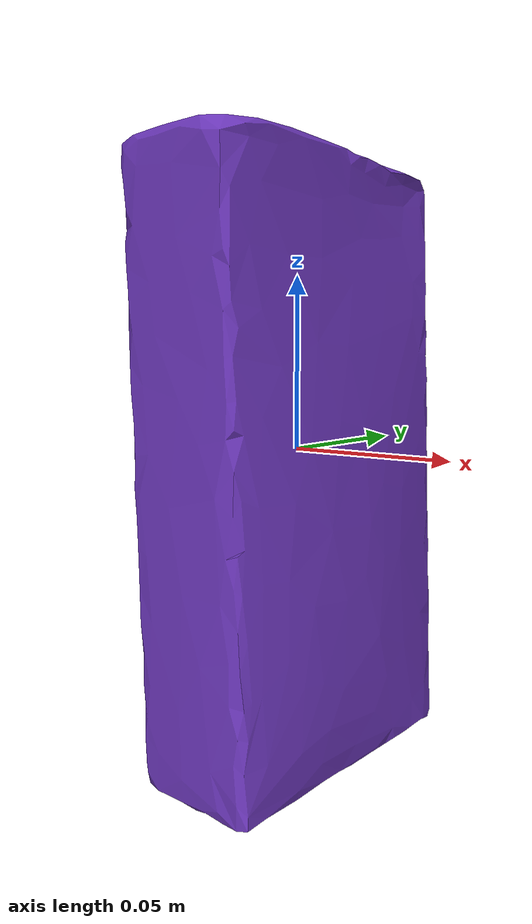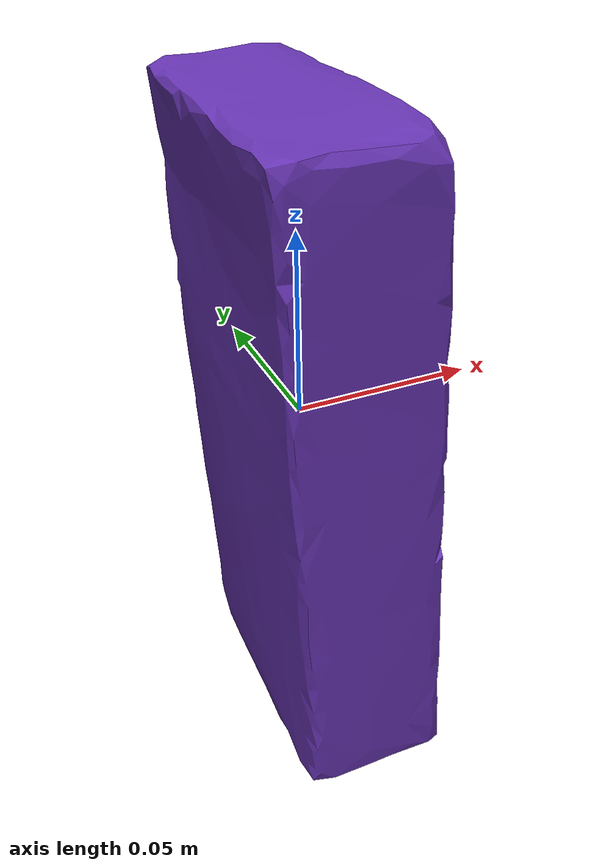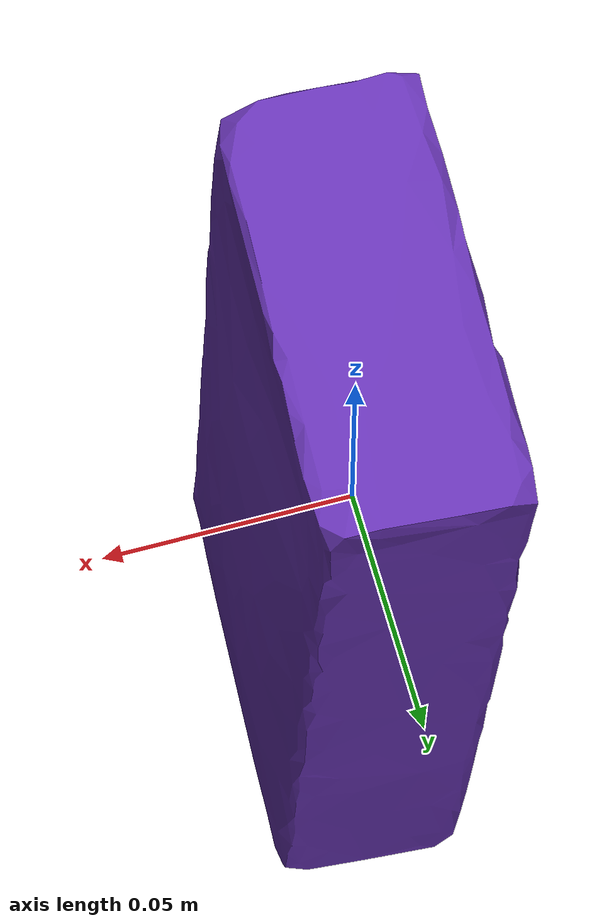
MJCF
<mujoco model="top_watertight_tiny">

  <asset>
    <mesh file="top_watertight_tiny.obj"/>
    <mesh file="top_watertight_tiny_collision_0.obj"/>
    <mesh file="top_watertight_tiny_collision_1.obj"/>
  </asset>
  <worldbody>
    <body name="top_watertight_tiny">
      <freejoint/>
      <geom solimp="0.90 0.95 0.001" solref="0.02 1.0" density="100" friction="0.95 0.4 0.3" rgba="0.4 0.2 0.7 1" mesh="top_watertight_tiny" group="2" type="mesh" contype="0" conaffinity="0"/>
      <geom solimp="0.90 0.95 0.001" solref="0.02 1.0" density="100" friction="0.95 0.4 0.3" mesh="top_watertight_tiny_collision_0" rgba="0.8407492923032029 0.6696113289153081 0.9606987190115622 1" group="3" type="mesh"/>
      <geom solimp="0.90 0.95 0.001" solref="0.02 1.0" density="100" friction="0.95 0.4 0.3" mesh="top_watertight_tiny_collision_1" rgba="0.26566240008236064 0.48199237660455174 0.18804771490740757 1" group="3" type="mesh"/>
    </body>
  </worldbody>
</mujoco>
